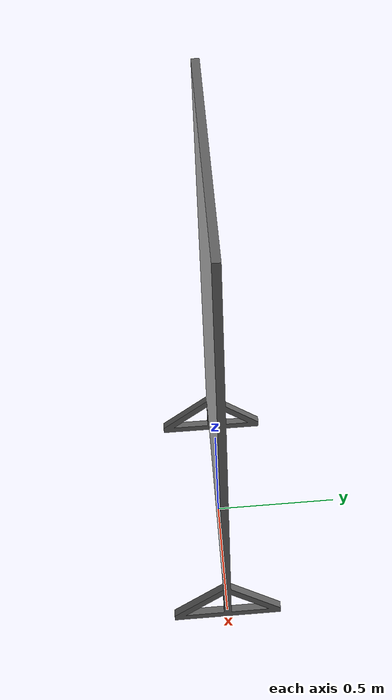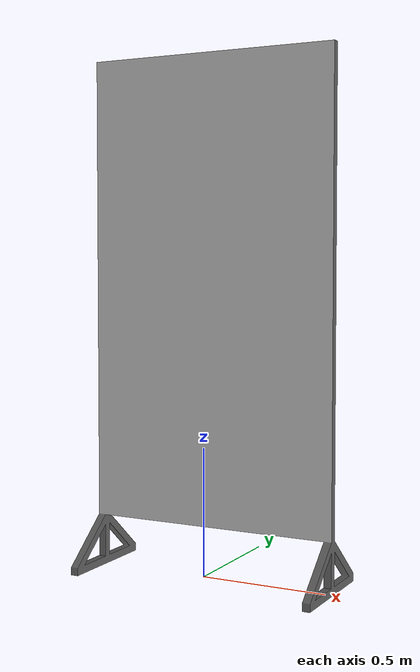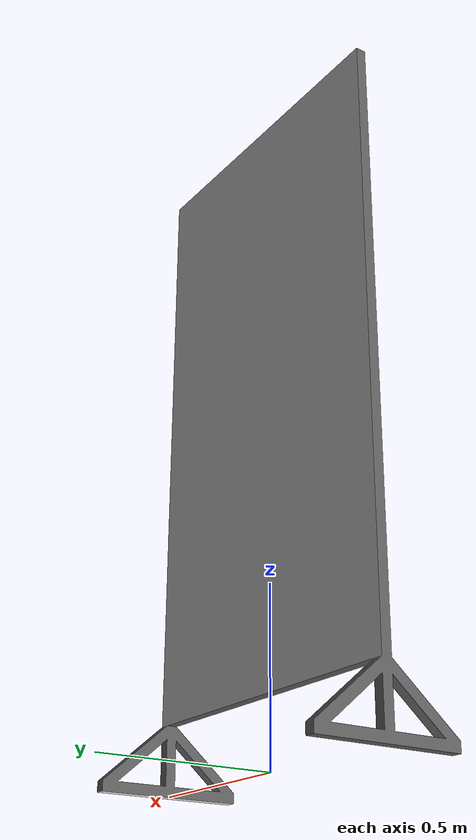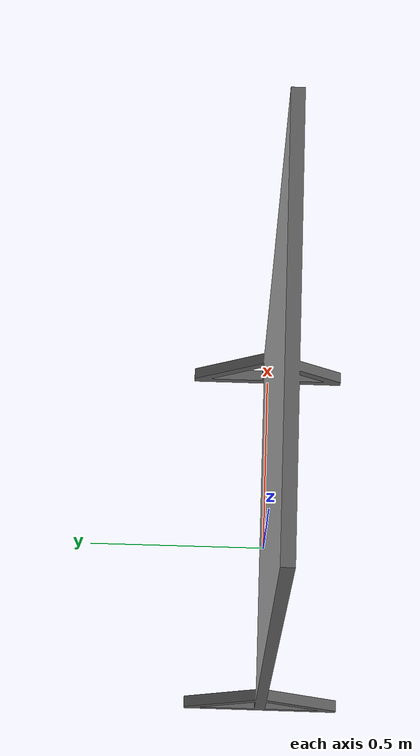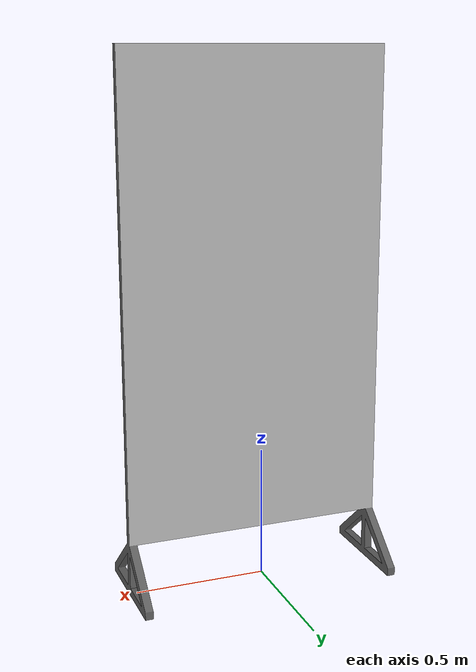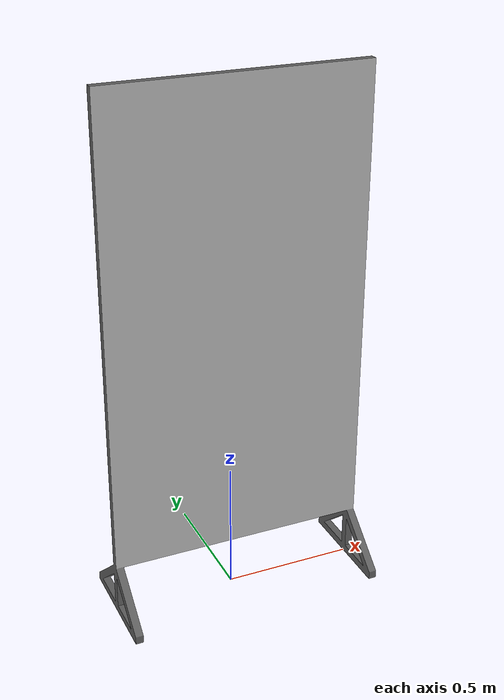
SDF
<?xml version='1.0'?>
<sdf version='1.4'>
  <model name="metal panel">
    <static>true</static>
    <pose>0 0 0 0 0 0</pose>

    <link name="metal panel">
      <visual name="panel">
        <geometry>
          <mesh>
            <uri>model://metal_panel2/metal_panel.dae</uri>
          </mesh>
        </geometry>
      </visual>
      <collision name="panel_collision">
        <geometry>
          <mesh>
            <uri>model://metal_panel2/metal_panel.dae</uri>
          </mesh>
        </geometry>
      </collision>
    </link>

  </model>
</sdf>
